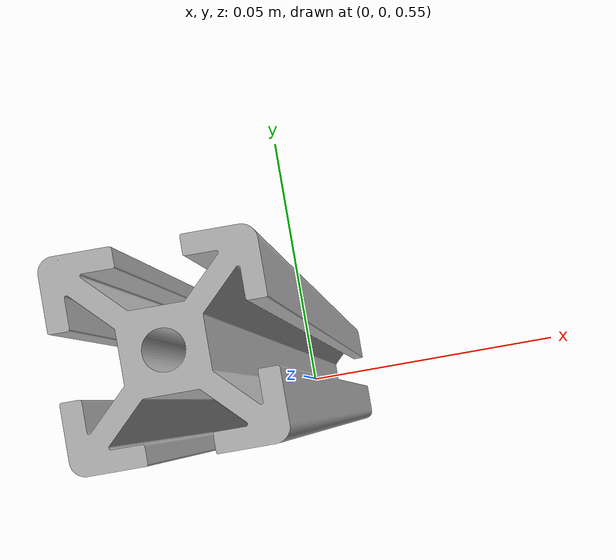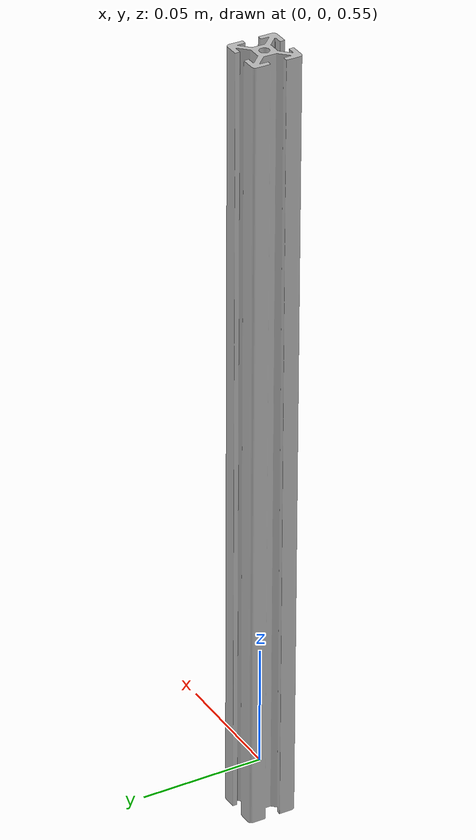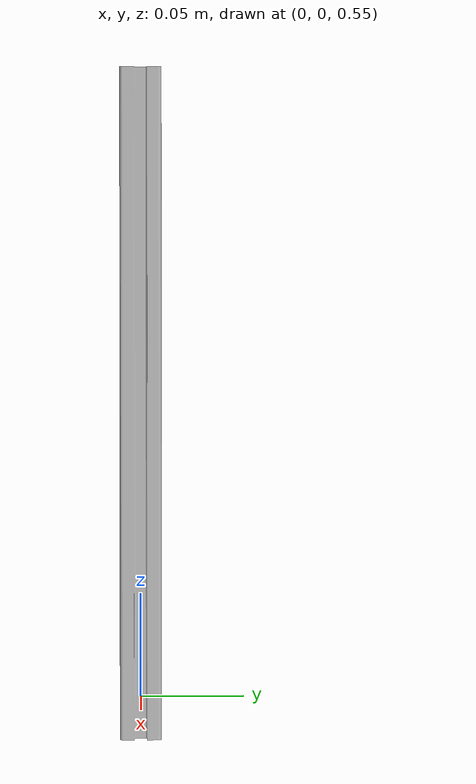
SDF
<sdf version='1.7'>
    <model name='side_extrusion_20'>
    <static>true</static>
      <link name='side_extrusion_20_link'>
        <inertial>
          <pose>0 0 0.85 0 0 0</pose>
          <mass>0.0615752</mass> <!-- Fix inertia parameters -->
        <inertia>
          <ixx>9.108e-05</ixx>
          <ixy>0</ixy>
          <ixz>0</ixz>
          <iyy>2.51e-06</iyy>
          <iyz>0</iyz>
          <izz>8.931e-05</izz>
        </inertia>
        </inertial>
        <collision name='side_extrusion_20_link_collision'>
          <pose>0 0 0.85 0 0 0</pose>
          <geometry>
            <mesh>
              <scale>.001 .001 .0004 </scale>
              <uri>model://side_extrusion_20/meshes/side_extrusion_20.stl</uri>
            </mesh>
          </geometry>
        </collision>
        <visual name='side_extrusion_20_link_visual'>
          <pose>0 0 0.85 0 0 0</pose>
          <geometry>
            <mesh>
              <scale>.001 .001 .0004 </scale>
              <uri>model://side_extrusion_20/meshes/side_extrusion_20.obj</uri>
            </mesh>
          </geometry>
          <material name="mount_black">
            <color rgba="0.18 0.18 0.18 1.0"/>
          </material>

          <cast_shadows>1</cast_shadows>
        </visual>
      </link>
    </model>
  </sdf>
